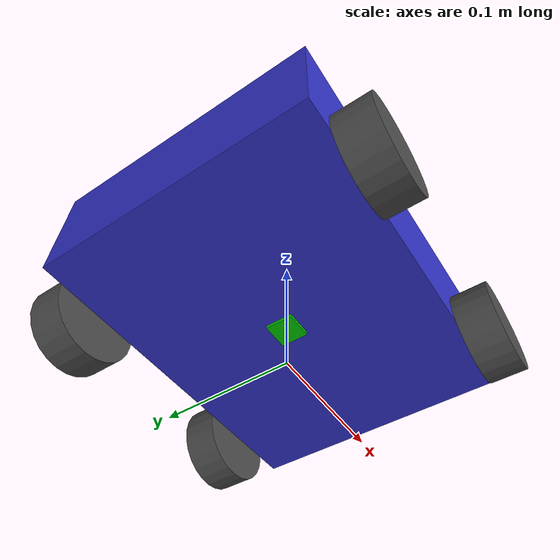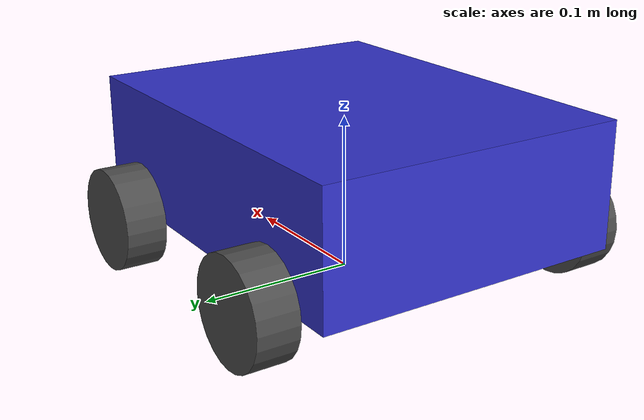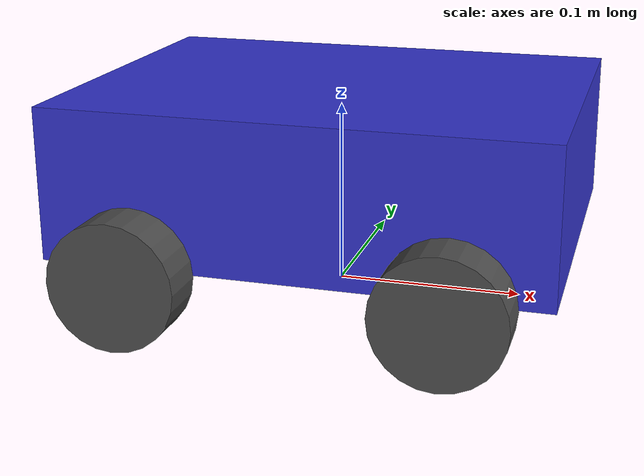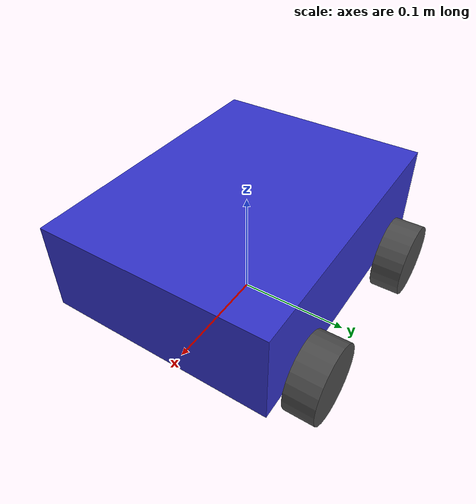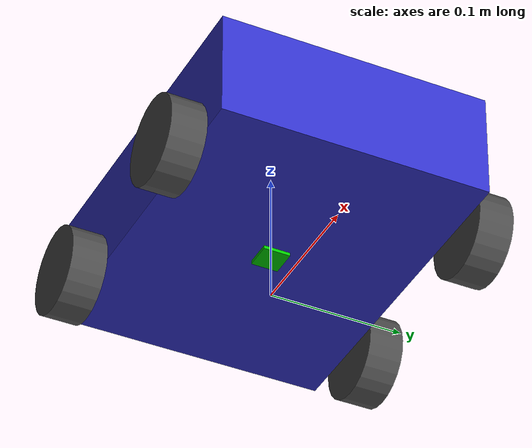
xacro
<?xml version="1.0"?>
<robot xmlns:xacro="http://www.ros.org/wiki/xacro" name="skid_steer_robot">

  <!-- ==================== Configurable Properties ==================== -->
  <xacro:property name="wheel_radius"   value="0.033"/>
  <xacro:property name="wheel_width"    value="0.026"/>
  <xacro:property name="track_width"    value="0.23"/>
  <xacro:property name="wheelbase"      value="0.16"/>
  <xacro:property name="chassis_length" value="0.26"/>
  <xacro:property name="chassis_width"  value="0.20"/>
  <xacro:property name="chassis_height" value="0.08"/>
  <xacro:property name="chassis_mass"   value="2.0"/>
  <xacro:property name="wheel_mass"     value="0.15"/>

  <!-- Laser mount: on top of chassis center -->
  <xacro:property name="laser_x"  value="0.0"/>
  <xacro:property name="laser_y"  value="0.0"/>
  <xacro:property name="laser_z"  value="${chassis_height / 2.0 + 0.02}"/>

  <!-- IMU mount: at center of base_link -->
  <xacro:property name="imu_x" value="0.0"/>
  <xacro:property name="imu_y" value="0.0"/>
  <xacro:property name="imu_z" value="0.0"/>

  <!-- ==================== Inertia Macros ==================== -->
  <xacro:macro name="box_inertia" params="m x y z">
    <inertial>
      <mass value="${m}"/>
      <inertia ixx="${m*(y*y+z*z)/12.0}" ixy="0" ixz="0"
               iyy="${m*(x*x+z*z)/12.0}" iyz="0"
               izz="${m*(x*x+y*y)/12.0}"/>
    </inertial>
  </xacro:macro>

  <xacro:macro name="cylinder_inertia" params="m r h">
    <inertial>
      <mass value="${m}"/>
      <inertia ixx="${m*(3.0*r*r+h*h)/12.0}" ixy="0" ixz="0"
               iyy="${m*(3.0*r*r+h*h)/12.0}" iyz="0"
               izz="${m*r*r/2.0}"/>
    </inertial>
  </xacro:macro>

  <!-- ==================== Wheel Macro ==================== -->
  <xacro:macro name="wheel" params="name x_offset y_offset">
    <link name="${name}_wheel">
      <visual>
        <geometry>
          <cylinder radius="${wheel_radius}" length="${wheel_width}"/>
        </geometry>
        <material name="dark_grey">
          <color rgba="0.3 0.3 0.3 1.0"/>
        </material>
      </visual>
      <collision>
        <geometry>
          <cylinder radius="${wheel_radius}" length="${wheel_width}"/>
        </geometry>
      </collision>
      <xacro:cylinder_inertia m="${wheel_mass}" r="${wheel_radius}" h="${wheel_width}"/>
    </link>

    <joint name="${name}_wheel_joint" type="continuous">
      <parent link="base_link"/>
      <child  link="${name}_wheel"/>
      <origin xyz="${x_offset} ${y_offset} 0.0" rpy="${-pi/2.0} 0 0"/>
      <axis xyz="0 0 1"/>
    </joint>
  </xacro:macro>

  <!-- ==================== Base Link ==================== -->
  <link name="base_footprint"/>

  <link name="base_link">
    <visual>
      <origin xyz="0 0 ${chassis_height / 2.0}" rpy="0 0 0"/>
      <geometry>
        <box size="${chassis_length} ${chassis_width} ${chassis_height}"/>
      </geometry>
      <material name="blue">
        <color rgba="0.2 0.2 0.8 1.0"/>
      </material>
    </visual>
    <collision>
      <origin xyz="0 0 ${chassis_height / 2.0}" rpy="0 0 0"/>
      <geometry>
        <box size="${chassis_length} ${chassis_width} ${chassis_height}"/>
      </geometry>
    </collision>
    <xacro:box_inertia m="${chassis_mass}" x="${chassis_length}" y="${chassis_width}" z="${chassis_height}"/>
  </link>

  <joint name="base_footprint_joint" type="fixed">
    <parent link="base_footprint"/>
    <child  link="base_link"/>
    <origin xyz="0 0 ${wheel_radius}" rpy="0 0 0"/>
  </joint>

  <!-- ==================== Wheels ==================== -->
  <xacro:wheel name="front_left"  x_offset="${wheelbase/2.0}"  y_offset="${track_width/2.0}"/>
  <xacro:wheel name="front_right" x_offset="${wheelbase/2.0}"  y_offset="${-track_width/2.0}"/>
  <xacro:wheel name="rear_left"   x_offset="${-wheelbase/2.0}" y_offset="${track_width/2.0}"/>
  <xacro:wheel name="rear_right"  x_offset="${-wheelbase/2.0}" y_offset="${-track_width/2.0}"/>

  <!-- ==================== IMU Link ==================== -->
  <link name="imu_link">
    <visual>
      <geometry>
        <box size="0.02 0.02 0.005"/>
      </geometry>
      <material name="green">
        <color rgba="0.0 0.8 0.0 1.0"/>
      </material>
    </visual>
    <collision>
      <geometry>
        <box size="0.02 0.02 0.005"/>
      </geometry>
    </collision>
    <inertial>
      <mass value="0.01"/>
      <inertia ixx="1e-6" ixy="0" ixz="0" iyy="1e-6" iyz="0" izz="1e-6"/>
    </inertial>
  </link>

  <joint name="imu_joint" type="fixed">
    <parent link="base_link"/>
    <child  link="imu_link"/>
    <origin xyz="${imu_x} ${imu_y} ${imu_z}" rpy="0 0 0"/>
  </joint>

  <!-- ==================== Laser Link (RPLIDAR A1) ==================== -->
  <link name="laser">
    <visual>
      <geometry>
        <cylinder radius="0.035" length="0.020"/>
      </geometry>
      <material name="red">
        <color rgba="0.8 0.0 0.0 1.0"/>
      </material>
    </visual>
    <collision>
      <geometry>
        <cylinder radius="0.035" length="0.020"/>
      </geometry>
    </collision>
    <inertial>
      <mass value="0.17"/>
      <inertia ixx="1e-5" ixy="0" ixz="0" iyy="1e-5" iyz="0" izz="1e-5"/>
    </inertial>
  </link>

  <joint name="laser_joint" type="fixed">
    <parent link="base_link"/>
    <child  link="laser"/>
    <origin xyz="${laser_x} ${laser_y} ${laser_z}" rpy="0 0 0"/>
  </joint>

</robot>
